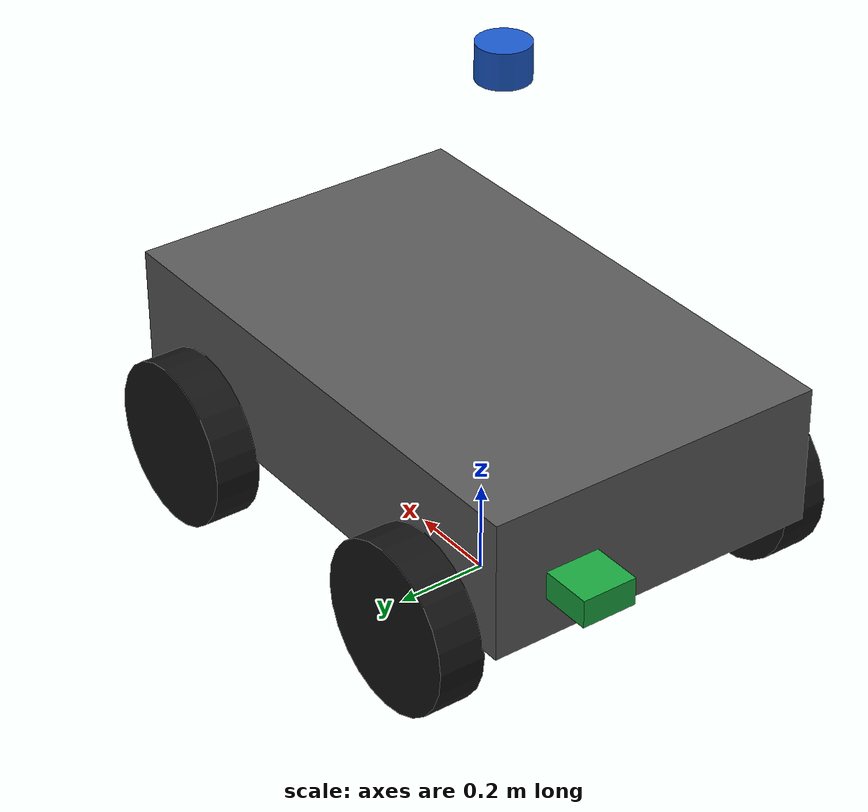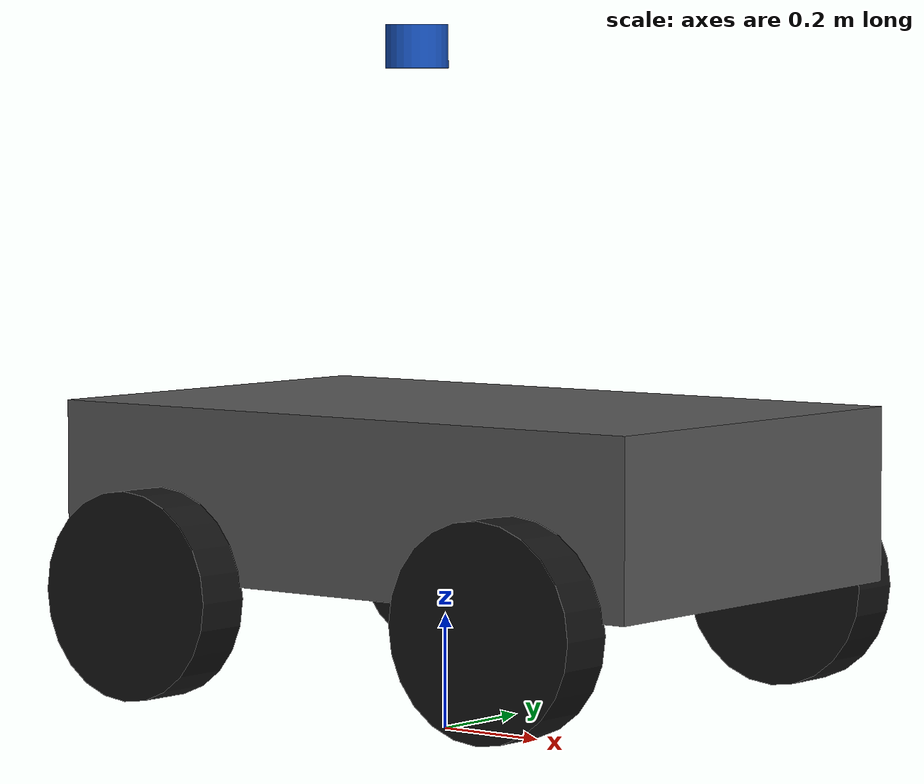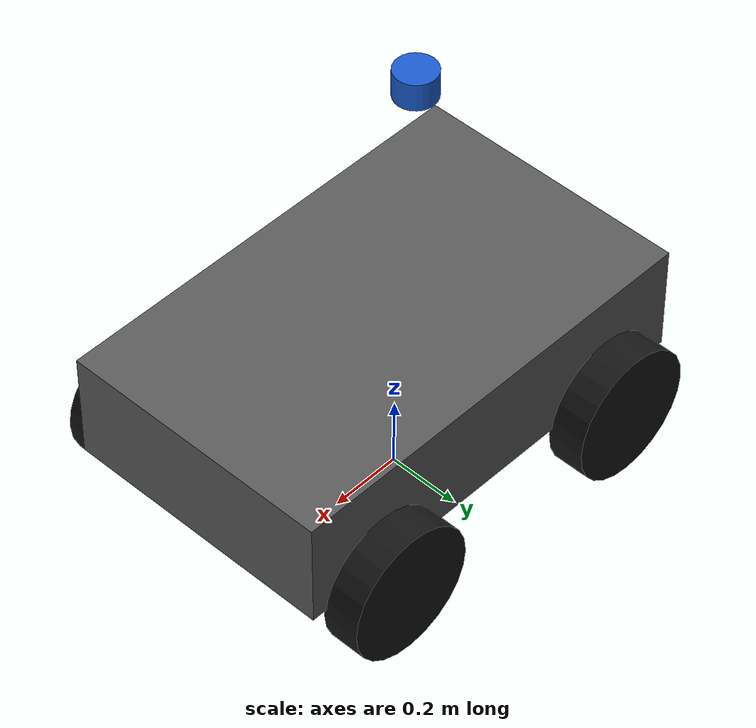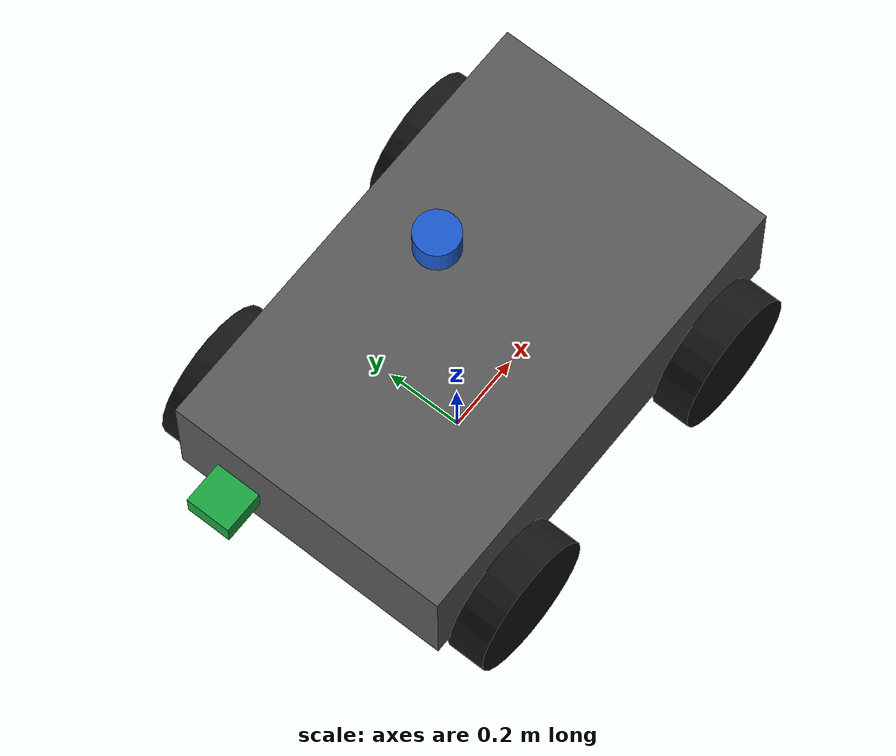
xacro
<?xml version="1.0"?>
<robot xmlns:xacro="http://www.ros.org/wiki/xacro" name="iplow_robot">

  <!-- Root frame -->
  <link name="base"/>

  <!-- Robot body / chassis -->
  <link name="body">
    <visual name="chassis">
      <origin xyz="0 0 0.20" rpy="0 0 0"/>
      <geometry>
        <box size="1.20 0.75 0.30"/>
      </geometry>
      <material name="chassis_gray">
        <color rgba="0.35 0.35 0.35 1.0"/>
      </material>
    </visual>

    <!-- Approximate wheel geometry.
         Wheels are visuals of body rather than additional TF frames. -->
    <visual name="front_left_wheel">
      <origin xyz="0.38 0.42 0.03" rpy="1.5708 0 0"/>
      <geometry>
        <cylinder radius="0.18" length="0.10"/>
      </geometry>
      <material name="wheel_black">
        <color rgba="0.08 0.08 0.08 1.0"/>
      </material>
    </visual>

    <visual name="front_right_wheel">
      <origin xyz="0.38 -0.42 0.03" rpy="1.5708 0 0"/>
      <geometry>
        <cylinder radius="0.18" length="0.10"/>
      </geometry>
      <material name="wheel_black"/>
    </visual>

    <visual name="rear_left_wheel">
      <origin xyz="-0.38 0.42 0.03" rpy="1.5708 0 0"/>
      <geometry>
        <cylinder radius="0.18" length="0.10"/>
      </geometry>
      <material name="wheel_black"/>
    </visual>

    <visual name="rear_right_wheel">
      <origin xyz="-0.38 -0.42 0.03" rpy="1.5708 0 0"/>
      <geometry>
        <cylinder radius="0.18" length="0.10"/>
      </geometry>
      <material name="wheel_black"/>
    </visual>
  </link>

  <!-- LiDAR frame -->
  <link name="livox_frame">
    <visual name="lidar">
      <origin xyz="0 0 0" rpy="0 0 0"/>
      <geometry>
        <cylinder radius="0.055" length="0.075"/>
      </geometry>
      <material name="lidar_blue">
        <color rgba="0.10 0.35 0.80 1.0"/>
      </material>
    </visual>
  </link>

  <!-- LiDAR IMU frame -->
  <link name="livox_imu"/>

  <!-- GPS frame -->
  <link name="gps">
    <visual name="gps_receiver">
      <origin xyz="0 0 0" rpy="0 0 0"/>
      <geometry>
        <box size="0.12 0.12 0.06"/>
      </geometry>
      <material name="gps_green">
        <color rgba="0.10 0.65 0.25 1.0"/>
      </material>
    </visual>
  </link>

  <!-- Static frame tree -->

  <joint name="base_to_body" type="fixed">
    <parent link="base"/>
    <child link="body"/>
    <origin xyz="0.0569 -0.0028 0.2234" rpy="0 0 0"/>
  </joint>

  <joint name="body_to_livox" type="fixed">
    <parent link="body"/>
    <child link="livox_frame"/>
    <origin xyz="-0.1201 0.0026 0.9655" rpy="3.141592653589793 0.0 1.5707963267948966"/>
  </joint>

  <joint name="livox_to_imu" type="fixed">
    <parent link="livox_frame"/>
    <child link="livox_imu"/>
    <origin xyz="0.0 0.0 0.0" rpy="0 0 0"/>
  </joint>

  <joint name="body_to_gps" type="fixed">
    <parent link="body"/>
    <child link="gps"/>
    <origin xyz="-0.6500 0.2000 0.1700" rpy="0 0 0"/>
  </joint>

</robot>
